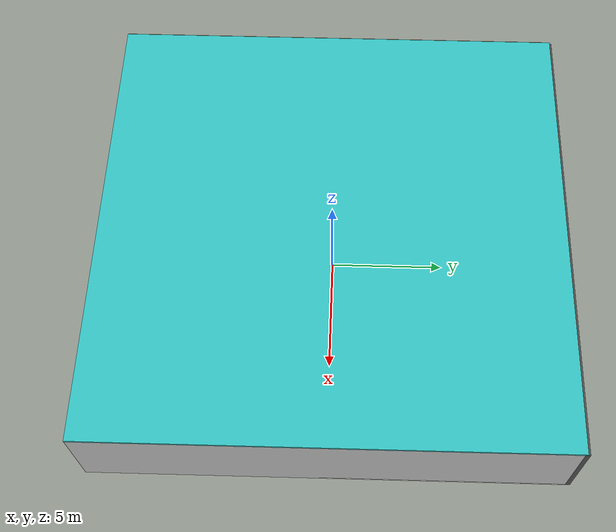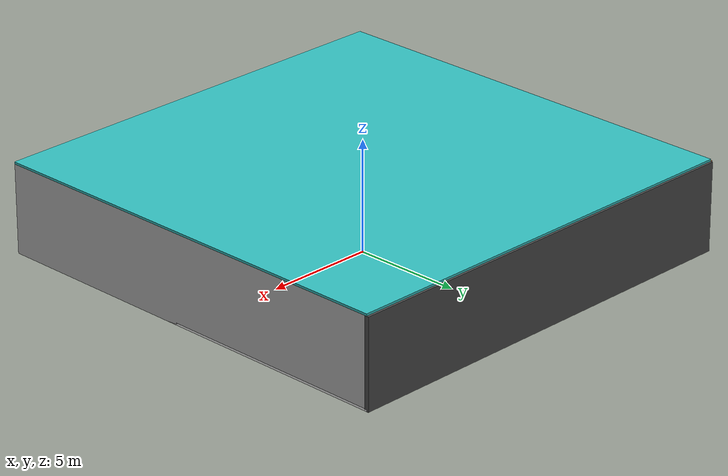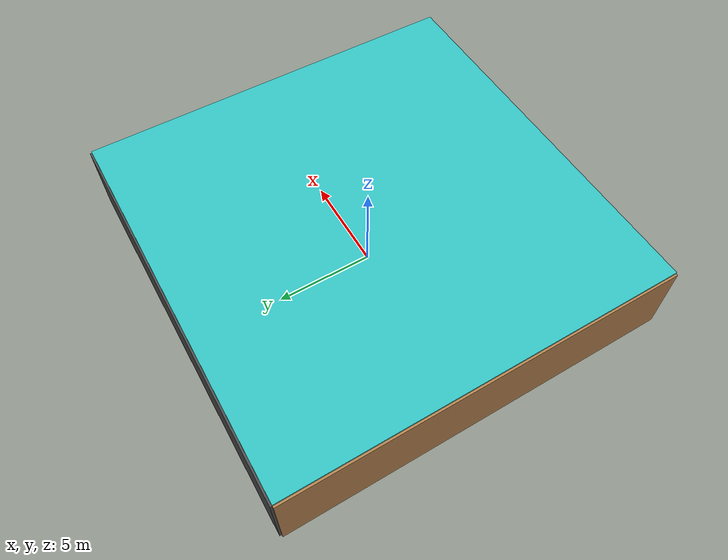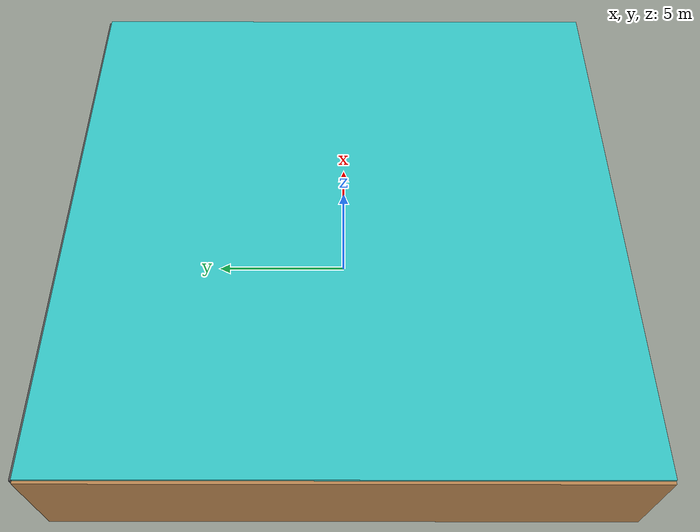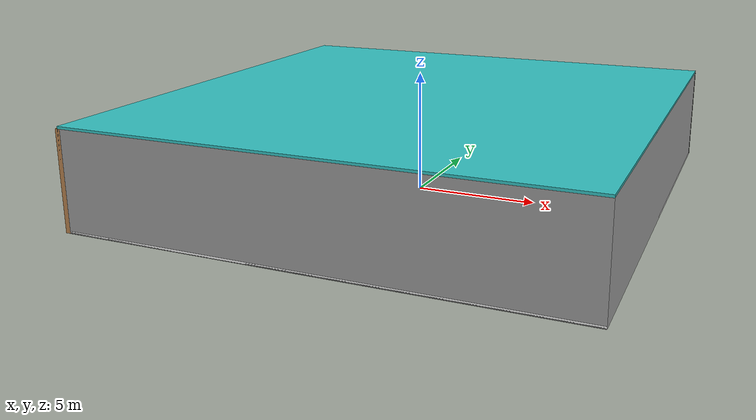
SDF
<sdf version="1.4">
 <world name="default">
  <physics type="ode">
   <max_step_size>0.001</max_step_size>
   <real_time_factor>1</real_time_factor>
   <real_time_update_rate>1000</real_time_update_rate>
   <gravity>0 0 -9.8</gravity>
  </physics>
  <scene><ambient>0.4 0.4 0.4 1</ambient><background>0.7 0.7 0.7 1</background><shadows>1</shadows></scene>
  <model name="Surrounding">
   <static>1</static>
   <link name="Ceiling">
    <collision name="Ceiling_Collision"><geometry><box><size>20 20 0.1</size></box></geometry></collision>
    <visual name="Ceiling_Visual">
     <geometry><box><size>20 20 0.1</size></box></geometry>
     <material>
      <script><uri>file://media/materials/scripts/gazebo.material</uri><name>Gazebo/Turquoise</name></script>
     </material>
    </visual>
    <pose>0 0 4.05 0 0 0</pose>
   </link>
   <link name="Wall_South">
    <collision name="Wall_South_Collision">
     <geometry><box><size>20 0 4</size></box></geometry>
     <pose>0 0 2 0 -0 0</pose>
    </collision>
    <visual name="Wall_South_Visual">
     <pose>0 0 2 0 -0 0</pose>
     <geometry><box><size>20 0 4</size></box></geometry>
     <material>
      <script><uri>file://media/materials/scripts/gazebo.material</uri><name>Gazebo/Grey</name></script>
     </material>
    </visual>
    <velocity_decay><linear>0</linear><angular>0</angular></velocity_decay>
    <pose>0 -10 0 0 -0 0</pose>
   </link>
   <link name="Wall_East">
    <collision name="Wall_21_Collision">
     <geometry><box><size>20 0 4</size></box></geometry>
     <pose>0 0 2 0 -0 0</pose>
    </collision>
    <visual name="Wall_21_Visual">
     <pose>0 0 2 0 -0 0</pose>
     <geometry><box><size>20 0 4</size></box></geometry>
     <material>
      <script><uri>file://media/materials/scripts/gazebo.material</uri><name>Gazebo/JointAnchor</name></script>
     </material>
    </visual>
    <velocity_decay><linear>0</linear><angular>0</angular></velocity_decay>
    <pose>10 0 0 0 -0 1.5708</pose>
   </link>
   <link name="Wall_North">
    <collision name="Wall_22_Collision">
     <geometry><box><size>20 0.2 4</size></box></geometry>
     <pose>0 0 2 0 -0 0</pose>
    </collision>
    <visual name="Wall_22_Visual">
     <pose>0 0 2 0 -0 0</pose>
     <geometry><box><size>20 0.2 4</size></box></geometry>
     <material>
      <script><uri>file://media/materials/scripts/gazebo.material</uri><name>Gazebo/DarkGrey</name></script>
     </material>
    </visual>
    <velocity_decay><linear>0</linear><angular>0</angular></velocity_decay>
    <pose>0 10 0 0 -0 0</pose>
   </link>
   <link name="Wall_West">
    <collision name="Wall_23_Collision">
     <geometry><box><size>20 0.2 4</size></box></geometry>
     <pose>0 0 2 0 -0 0</pose>
    </collision>
    <visual name="Wall_23_Visual">
     <pose>0 0 2 0 -0 0</pose>
     <geometry><box><size>20 0.2 4</size></box></geometry>
     <material>
      <script><uri>file://media/materials/scripts/gazebo.material</uri><name>Gazebo/WoodPallet</name></script>
     </material>
    </visual>
    <velocity_decay><linear>0</linear><angular>0</angular></velocity_decay>
    <pose>-10 0 0 0 0 -1.5708</pose>
   </link>
   <link name="Ground_link">
    <collision name="collision">
     <pose>0 0 .05 0 -0 0</pose>
     <geometry><box><size>20 20 0.1</size></box></geometry>
    </collision>
    <visual name="visual">
     <pose>0 0 .05 0 -0 0</pose>
     <geometry><box><size>20 20 0.1</size></box></geometry>
     <material>
      <script><uri>file://media/materials/scripts/gazebo.material</uri><name>Gazebo/White</name></script>
     </material>
    </visual>
   </link>
   <static>1</static>
  </model>
  <spherical_coordinates>
   <surface_model>EARTH_WGS84</surface_model>
   <latitude_deg>0</latitude_deg>
   <longitude_deg>0</longitude_deg>
   <elevation>0</elevation>
   <heading_deg>0</heading_deg>
  </spherical_coordinates>
  <light name="lightball_0" type="diffuse">
   <diffuse>0.8 0.8 0.8 1</diffuse>
   <specular>0.2 0.2 0.2 1</specular>
   <attenuation>
    <range>100</range>
    <constant>0.7</constant>
    <linear>0.01</linear>
    <quadratic>0.001</quadratic>
   </attenuation>
   <direction>-0.5 0.1 -0.9</direction>
   <pose>8.35644231993 -1.07485818067 1.44896121973 0 0 0</pose>
  </light>
  <light name="lightball_1" type="diffuse">
   <diffuse>0.8 0.8 0.8 1</diffuse>
   <specular>0.2 0.2 0.2 1</specular>
   <attenuation>
    <range>100</range>
    <constant>0.7</constant>
    <linear>0.01</linear>
    <quadratic>0.001</quadratic>
   </attenuation>
   <direction>-0.5 0.1 -0.9</direction>
   <pose>1.2488466489 5.75560297221 3.55883309848 0 0 0</pose>
  </light>
  <light name="lightball_2" type="diffuse">
   <diffuse>0.8 0.8 0.8 1</diffuse>
   <specular>0.2 0.2 0.2 1</specular>
   <attenuation>
    <range>100</range>
    <constant>0.7</constant>
    <linear>0.01</linear>
    <quadratic>0.001</quadratic>
   </attenuation>
   <direction>-0.5 0.1 -0.9</direction>
   <pose>7.41690781786 -8.15873541522 0.662071314171 0 0 0</pose>
  </light>
  <light name="lightball_3" type="diffuse">
   <diffuse>0.8 0.8 0.8 1</diffuse>
   <specular>0.2 0.2 0.2 1</specular>
   <attenuation>
    <range>100</range>
    <constant>0.7</constant>
    <linear>0.01</linear>
    <quadratic>0.001</quadratic>
   </attenuation>
   <direction>-0.5 0.1 -0.9</direction>
   <pose>-7.15554674521 9.2619729301 2.82033906321 0 0 0</pose>
  </light>
  <light name="lightball_4" type="diffuse">
   <diffuse>0.8 0.8 0.8 1</diffuse>
   <specular>0.2 0.2 0.2 1</specular>
   <attenuation>
    <range>100</range>
    <constant>0.7</constant>
    <linear>0.01</linear>
    <quadratic>0.001</quadratic>
   </attenuation>
   <direction>-0.5 0.1 -0.9</direction>
   <pose>8.92825008553 -0.411752739872 3.23526779048 0 0 0</pose>
  </light>
  <light name="lightball_5" type="diffuse">
   <diffuse>0.8 0.8 0.8 1</diffuse>
   <specular>0.2 0.2 0.2 1</specular>
   <attenuation>
    <range>100</range>
    <constant>0.7</constant>
    <linear>0.01</linear>
    <quadratic>0.001</quadratic>
   </attenuation>
   <direction>-0.5 0.1 -0.9</direction>
   <pose>6.61704354692 7.25405831165 1.04763991923 0 0 0</pose>
  </light>
  <light name="lightball_6" type="diffuse">
   <diffuse>0.8 0.8 0.8 1</diffuse>
   <specular>0.2 0.2 0.2 1</specular>
   <attenuation>
    <range>100</range>
    <constant>0.7</constant>
    <linear>0.01</linear>
    <quadratic>0.001</quadratic>
   </attenuation>
   <direction>-0.5 0.1 -0.9</direction>
   <pose>-0.71845604818 -4.06508146413 1.28141691262 0 0 0</pose>
  </light>
  <include>
   <uri>model://construction_cone</uri>
   <pose>-6.8518336778 -1.22251846042 0 0 0 2.80015911838</pose>
  </include>
  <include><uri>model://cabinet</uri><pose>-6.65316577696 4.33521457693 0 0 0 0.502924328617</pose></include>
  <include><uri>model://cabinet</uri><pose>-0.949378024214 -3.74321045418 0 0 0 2.94481269836</pose></include>
  <include><uri>model://cabinet</uri><pose>2.20832204524 7.32280555079 0 0 0 2.86118212228</pose></include>
  <include><uri>model://cabinet</uri><pose>3.56475855098 -4.19709391118 0 0 0 0.946889465366</pose></include>
  <include>
   <uri>model://construction_cone</uri>
   <pose>7.43871138735 -8.52908603567 0 0 0 2.50770916243</pose>
  </include>
 </world>
</sdf>

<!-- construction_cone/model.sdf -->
<sdf version="1.5">
  <model name="Construction Cone">
    <link name="link">
      <collision name="collision">
        <geometry>
          <mesh>
            <scale>10 10 10</scale>
            <uri>file://isr-testbed/construction_cone/meshes/construction_cone.dae</uri>
          </mesh>
        </geometry>
      </collision>
      <visual name="visual">
        <geometry>
          <mesh>
            <scale>10 10 10</scale>
            <uri>file://isr-testbed/construction_cone/meshes/construction_cone.dae</uri>
          </mesh>
        </geometry>
      </visual>
    </link>
  </model>
</sdf>

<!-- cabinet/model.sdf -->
<sdf version="1.5">
  <model name="cabinet">
    <static>true</static>
    <link name="cabinet_bottom_plate">
      <inertial>
        <pose>0 0 -1 0 0 0</pose>
        <inertia>
          <ixx>2.050000</ixx>
          <ixy>0</ixy>
          <ixz>0</ixz>
          <iyy>2.050000</iyy>
          <iyz>0</iyz>
          <izz>2.050000</izz>
        </inertia>
        <mass>25.000000</mass>
      </inertial>
      <collision name="cabinet_bottom_plate_geom">
        <pose>0 0 0.010000 0 0 0</pose>
        <geometry>
          <box>
            <size>0.450000 0.450000 0.020000</size>
          </box>
        </geometry>
      </collision>
      <visual name="cabinet_bottom_plate_geom_visual">
        <pose>0 0 0.010000 0 0 0</pose>
        <geometry>
          <box>
            <size>0.450000 0.450000 0.020000</size>
          </box>
        </geometry>
        <material>
          <script>
            <uri>model://media/materials/scripts/gazebo.material</uri>
            <name>Gazebo/Wood</name>
          </script>
        </material>
      </visual>
      <collision name="cabinet_bottom_plate_geom_cabinet_back_plate">
        <pose>0.235000 0 0.510000 0 0 0</pose>
        <geometry>
          <box>
            <size>0.020000 0.450000 1.020000</size>
          </box>
        </geometry>
      </collision>
      <visual name="cabinet_bottom_plate_geom_cabinet_back_plate_visual">
        <pose>0.235000 0 0.510000 0 0 0</pose>
        <geometry>
          <box>
            <size>0.020000 0.450000 1.020000</size>
          </box>
        </geometry>
        <material>
          <script>
            <uri>model://media/materials/scripts/gazebo.material</uri>
            <name>Gazebo/Wood</name>
          </script>
        </material>
      </visual>
      <collision name="cabinet_bottom_plate_geom_cabinet_left_plate">
        <pose>0 0.235000 0.510000 0 0 0</pose>
        <geometry>
          <box>
            <size>0.450000 0.020000 1.020000</size>
          </box>
        </geometry>
      </collision>
      <visual name="cabinet_bottom_plate_geom_cabinet_left_plate_visual">
        <pose>0 0.235000 0.510000 0 0 0</pose>
        <geometry>
          <box>
            <size>0.450000 0.020000 1.020000</size>
          </box>
        </geometry>
        <material>
          <script>
            <uri>model://media/materials/scripts/gazebo.material</uri>
            <name>Gazebo/Wood</name>
          </script>
        </material>
      </visual>
      <collision name="cabinet_bottom_plate_geom_cabinet_middle_plate">
        <pose>0 0 0.510000 0 0 0</pose>
        <geometry>
          <box>
            <size>0.450000 0.450000 0.020000</size>
          </box>
        </geometry>
      </collision>
      <visual name="cabinet_bottom_plate_geom_cabinet_middle_plate_visual">
        <pose>0 0 0.510000 0 0 0</pose>
        <geometry>
          <box>
            <size>0.450000 0.450000 0.020000</size>
          </box>
        </geometry>
        <material>
          <script>
            <uri>model://media/materials/scripts/gazebo.material</uri>
            <name>Gazebo/Wood</name>
          </script>
        </material>
      </visual>
      <collision name="cabinet_bottom_plate_geom_cabinet_right_plate">
        <pose>0 -0.235000 0.510000 0 0 0</pose>
        <geometry>
          <box>
            <size>0.450000 0.020000 1.020000</size>
          </box>
        </geometry>
      </collision>
      <visual name="cabinet_bottom_plate_geom_cabinet_right_plate_visual">
        <pose>0 -0.235000 0.510000 0 0 0</pose>
        <geometry>
          <box>
            <size>0.450000 0.020000 1.020000</size>
          </box>
        </geometry>
        <material>
          <script>
            <uri>model://media/materials/scripts/gazebo.material</uri>
            <name>Gazebo/Wood</name>
          </script>
        </material>
      </visual>
      <collision name="cabinet_bottom_plate_geom_cabinet_top_plate">
        <pose>0 0 1.010000 0 0 0</pose>
        <geometry>
          <box>
            <size>0.450000 0.450000 0.020000</size>
          </box>
        </geometry>
      </collision>
      <visual name="cabinet_bottom_plate_geom_cabinet_top_plate_visual">
        <pose>0 0 1.010000 0 0 0</pose>
        <geometry>
          <box>
            <size>0.450000 0.450000 0.020000</size>
          </box>
        </geometry>
        <material>
          <script>
            <uri>model://media/materials/scripts/gazebo.material</uri>
            <name>Gazebo/Wood</name>
          </script>
        </material>
      </visual>
    </link>
  </model>
</sdf>
